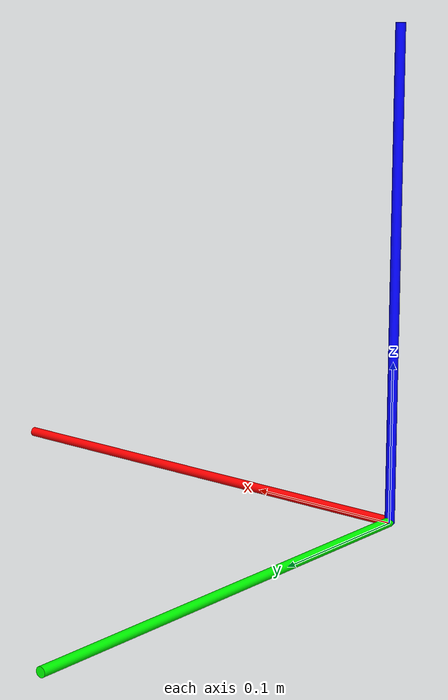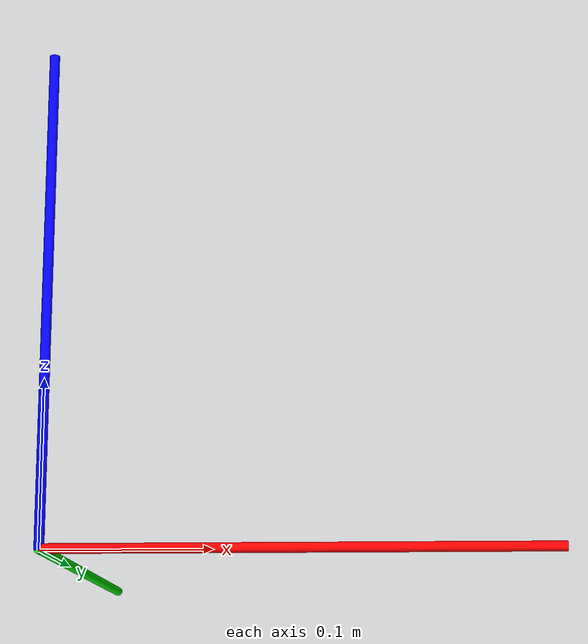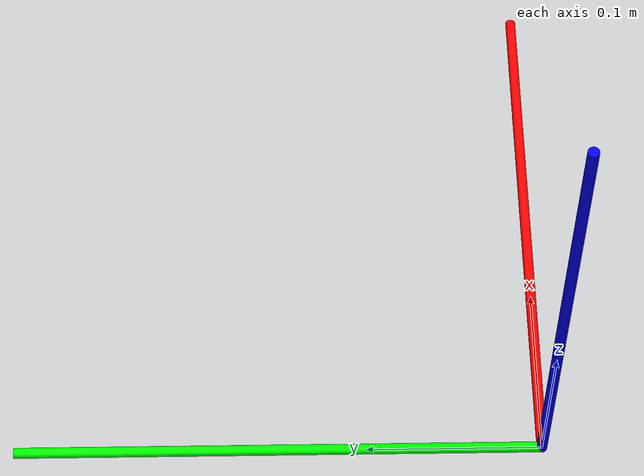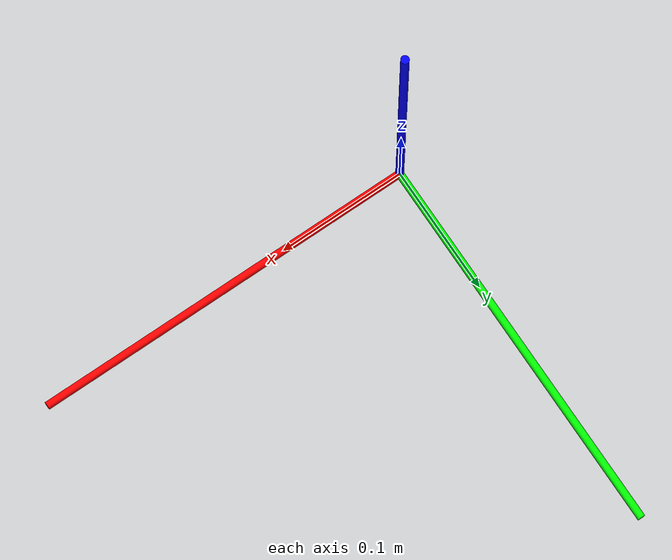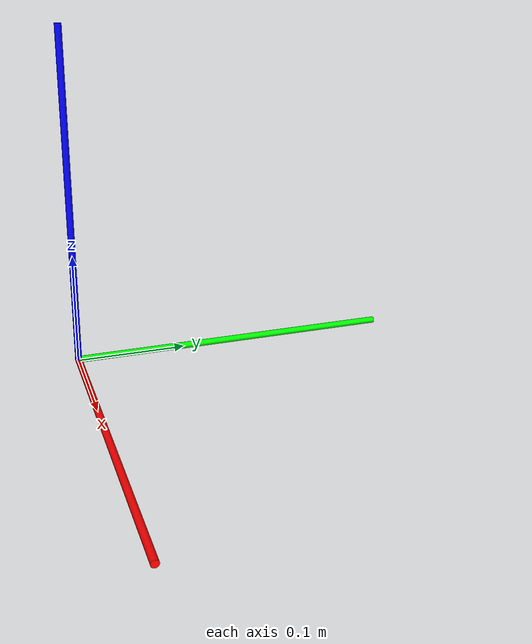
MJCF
<mujoco>
  <!-- Coordinate axes visualization -->
  <worldbody>
    <geom name="x_axis" type="cylinder" size="0.003 0.15" pos="0.15 0 0.001"
          euler="0 90 0" rgba="1 0 0 1" contype="0" conaffinity="0"/>
    <geom name="y_axis" type="cylinder" size="0.003 0.15" pos="0 0.15 0.001"
          euler="90 0 0" rgba="0 1 0 1" contype="0" conaffinity="0"/>
    <geom name="z_axis" type="cylinder" size="0.003 0.15" pos="0 0 0.15"
          euler="0 0 0" rgba="0 0 1 1" contype="0" conaffinity="0"/>
  </worldbody>
</mujoco>
